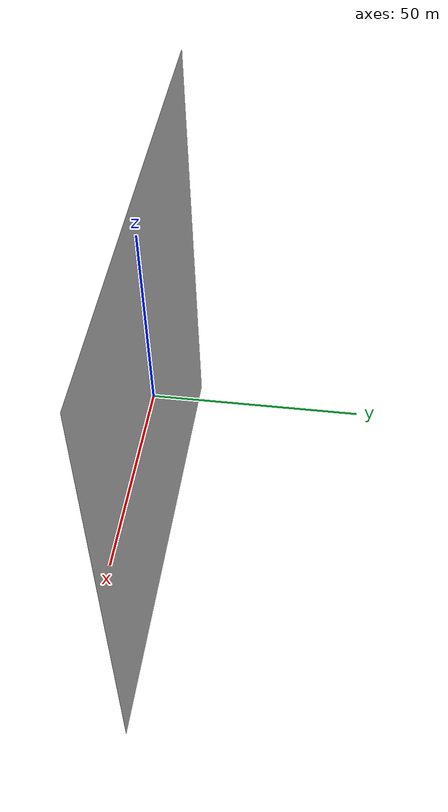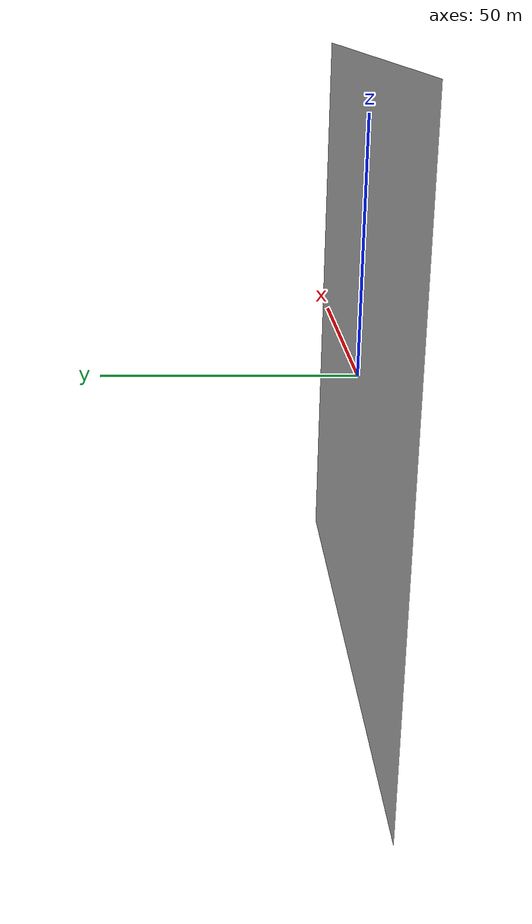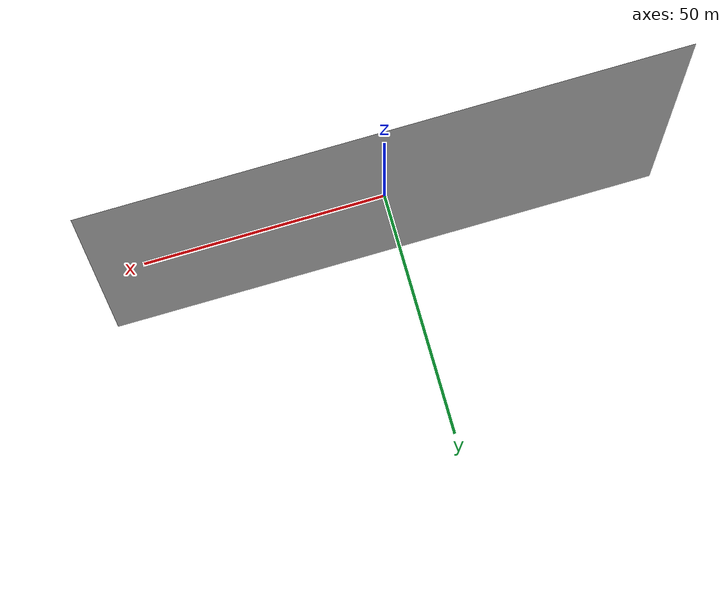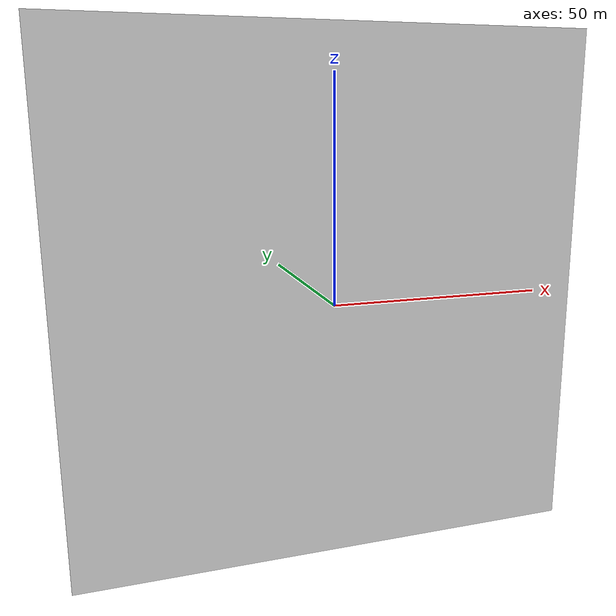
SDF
<?xml version="1.0"?>
<sdf version="1.7">
    <model name="cessna_artificial_plane">
      <static>true</static>
      <link name="link">
        <collision name="collision">
          <geometry>
            <mesh>
             <uri>model://cessna_artificial_plane/meshes/CessnaArtificialPlane.obj</uri>
             <scale>1 1 1</scale>
            </mesh>
          </geometry>
          <surface>
            <friction>
              <ode>
                <mu>1000</mu>
                <mu2>1000</mu2>
                <fdir1>0 0 0</fdir1>
                <slip1>0</slip1>
                <slip2>0</slip2>
              </ode>
            </friction>
            <bounce>
              <restitution_coefficient>0.4</restitution_coefficient>
              <threshold>1e+06</threshold>
            </bounce>
            <contact>
              <collide_without_contact>0</collide_without_contact>
              <collide_without_contact_bitmask>1</collide_without_contact_bitmask>
              <collide_bitmask>1</collide_bitmask>
              <ode>
                <soft_cfm>0</soft_cfm>
                <soft_erp>0.2</soft_erp>
                <kp>1e+13</kp>
                <kd>1</kd>
                <max_vel>0.01</max_vel>
                <min_depth>0</min_depth>
              </ode>
              <bullet>
                <split_impulse>1</split_impulse>
                <split_impulse_penetration_threshold>-0.01</split_impulse_penetration_threshold>
                <soft_cfm>0</soft_cfm>
                <soft_erp>0.2</soft_erp>
                <kp>1e+13</kp>
                <kd>1</kd>
              </bullet>
            </contact>
          </surface>
        </collision>
        <visual name="visual">
          <geometry>
            <mesh>
             <uri>model://cessna_artificial_plane/meshes/CessnaArtificialPlane.obj</uri>
             <scale>1 1 1</scale>
            </mesh>
          </geometry>
        </visual>
      </link>
    </model>
</sdf>
